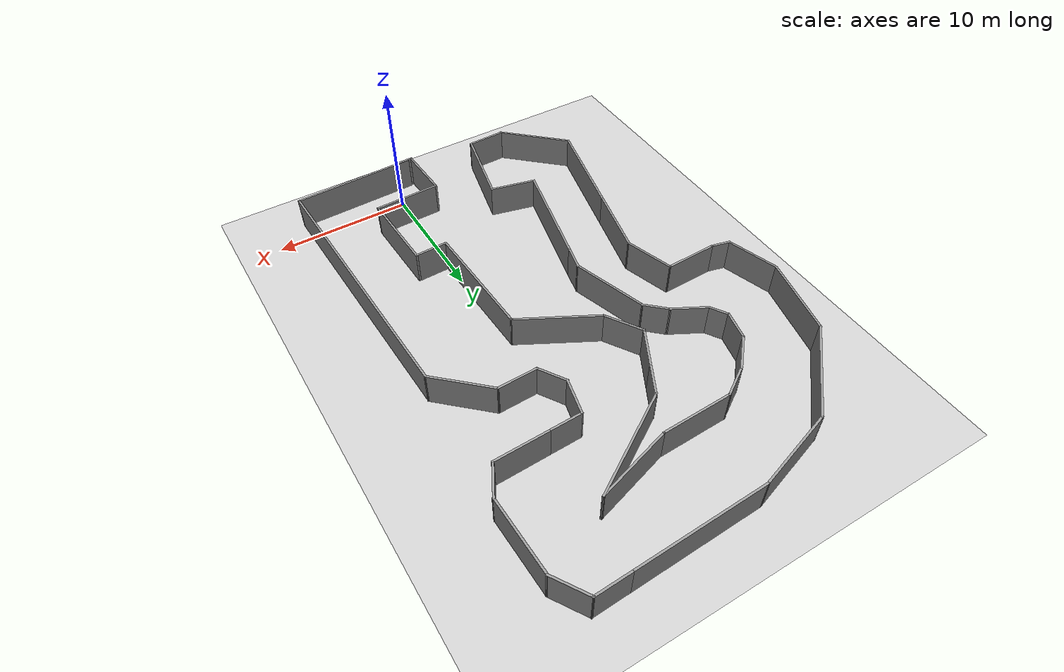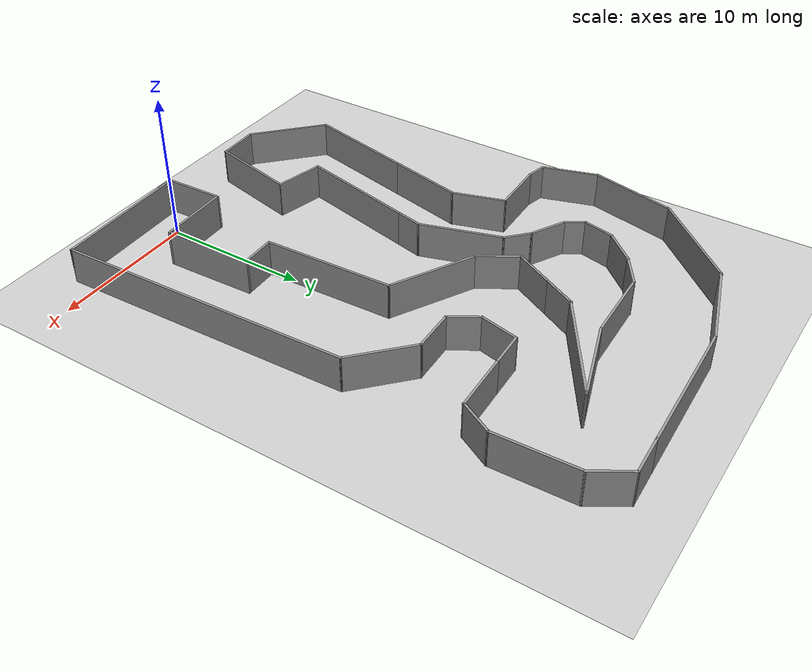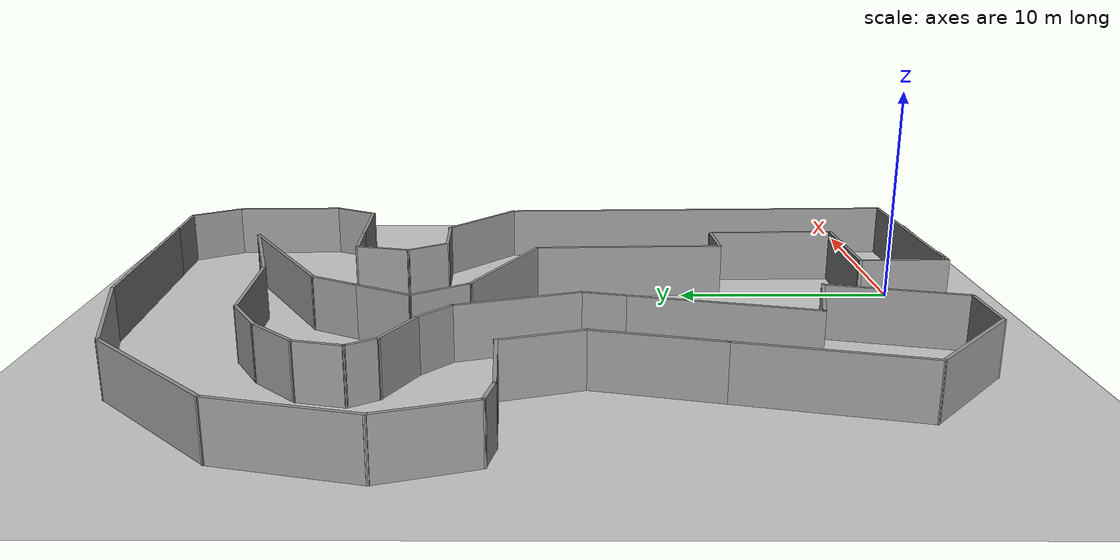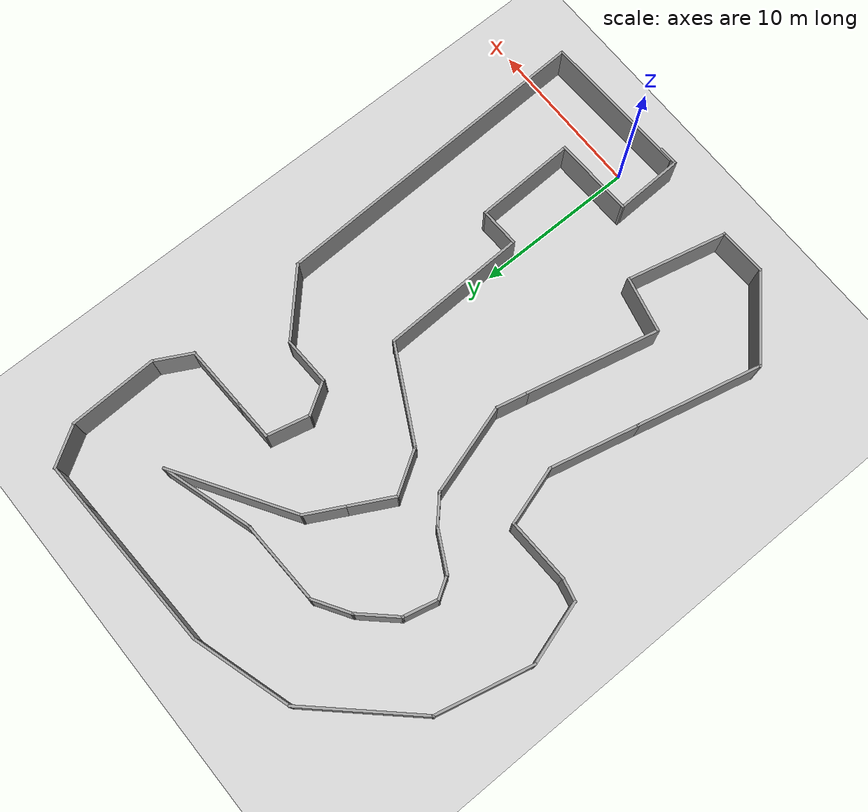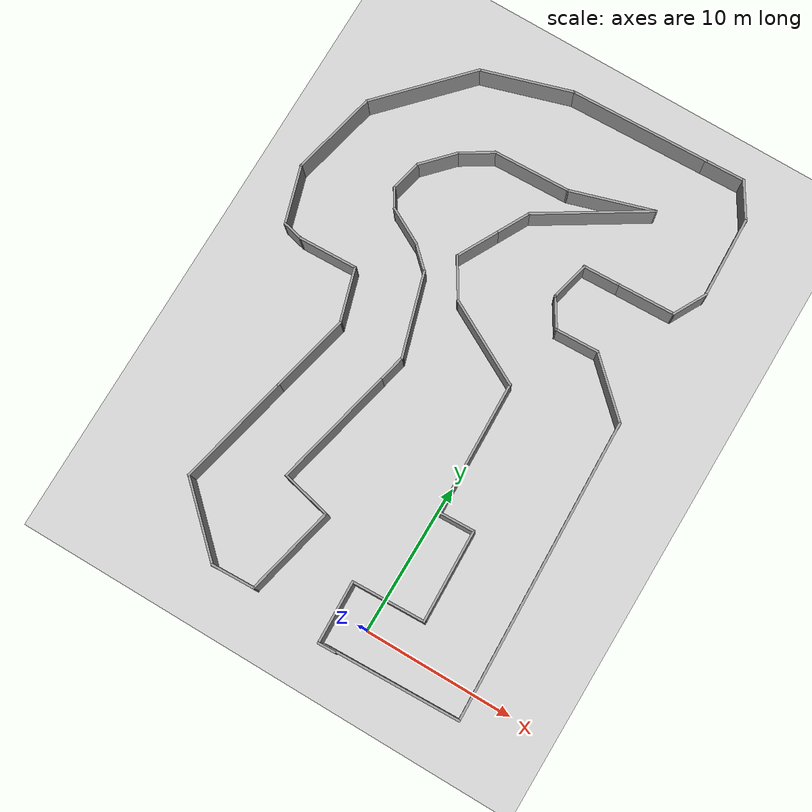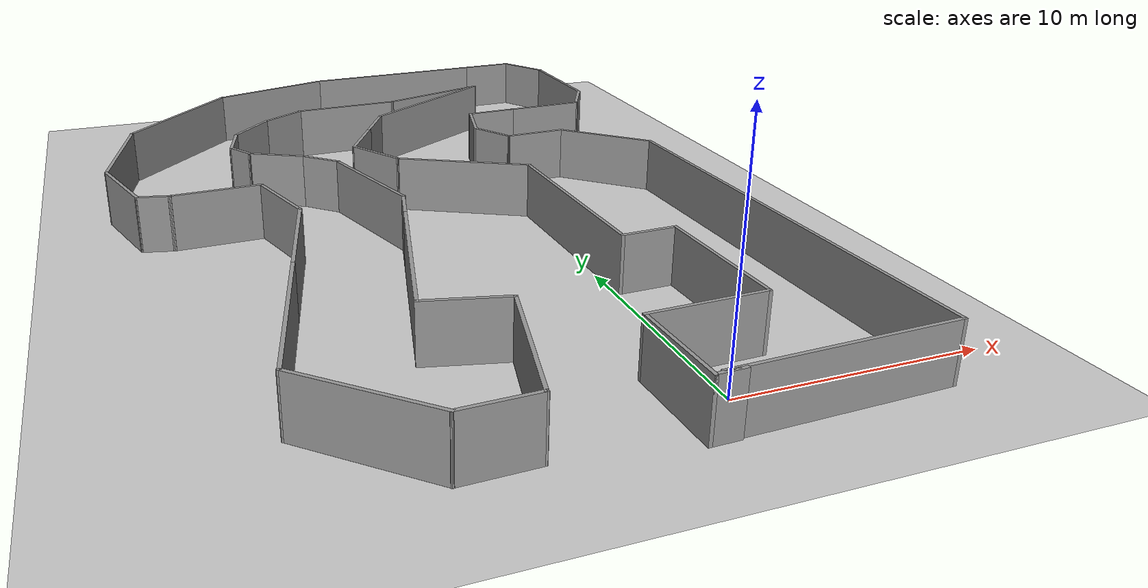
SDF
<sdf version="1.7">
 <world name="default">
  <light name="sun" type="directional">
   <pose>0 0 10 0 -0 0</pose>
   <diffuse>0.8 0.8 0.8 1</diffuse>
   <specular>0.2 0.2 0.2 1</specular>
   <attenuation>
    <range>1000</range>
    <constant>0.9</constant>
    <linear>0.01</linear>
    <quadratic>0.001</quadratic>
   </attenuation>
   <direction>-0.5 0.1 -0.9</direction>
   <spot><inner_angle>0</inner_angle><outer_angle>0</outer_angle><falloff>0</falloff></spot>
  </light>
  <model name="ground_plane">
   <static>1</static>
   <link name="link">
    <collision name="collision">
     <geometry><plane><normal>0 0 1</normal><size>100 100</size></plane></geometry>
     <surface>
      <contact><collide_bitmask>65535</collide_bitmask></contact>
      <friction><ode><mu>100</mu><mu2>50</mu2></ode></friction>
     </surface>
    </collision>
    <visual name="visual">
     <cast_shadows>0</cast_shadows>
     <geometry><plane><normal>0 0 1</normal><size>100 100</size></plane></geometry>
     <material>
      <script><uri>file://media/materials/scripts/gazebo.material</uri><name>Gazebo/Grey</name></script>
     </material>
    </visual>
   </link>
  </model>
  <gravity>0 0 -9.8</gravity>
  <magnetic_field>6e-06 2.3e-05 -4.2e-05</magnetic_field>
  <atmosphere type="adiabatic"/>
  <physics type="ode">
   <max_step_size>0.001</max_step_size>
   <real_time_factor>1</real_time_factor>
   <real_time_update_rate>1000</real_time_update_rate>
  </physics>
  <scene><ambient>0.4 0.4 0.4 1</ambient><background>0.7 0.7 0.7 1</background><shadows>1</shadows></scene>
  <audio><device>default</device></audio>
  <spherical_coordinates>
   <surface_model>EARTH_WGS84</surface_model>
   <latitude_deg>0</latitude_deg>
   <longitude_deg>0</longitude_deg>
   <elevation>0</elevation>
   <heading_deg>0</heading_deg>
  </spherical_coordinates>
  <model name="level2">
   <pose>-5.16233 16.5405 -0 0 -0 1.60346</pose>
   <link name="Wall_10">
    <collision name="Wall_10_Collision">
     <geometry><box><size>2.5 0.15 2.5</size></box></geometry>
     <pose>0 0 1.25 0 -0 0</pose>
    </collision>
    <visual name="Wall_10_Visual">
     <pose>0 0 1.25 0 -0 0</pose>
     <geometry><box><size>2.5 0.15 2.5</size></box></geometry>
     <material>
      <script><uri>file://media/materials/scripts/gazebo.material</uri><name>Gazebo/Grey</name></script>
      <ambient>1 1 1 1</ambient>
     </material>
     <meta><layer>0</layer></meta>
    </visual>
    <pose>9.04413 -6.72144 0 0 -0 -1.5708</pose>
   </link>
   <link name="Wall_11">
    <collision name="Wall_11_Collision">
     <geometry><box><size>4 0.15 2.5</size></box></geometry>
     <pose>0 0 1.25 0 -0 0</pose>
    </collision>
    <visual name="Wall_11_Visual">
     <pose>0 0 1.25 0 -0 0</pose>
     <geometry><box><size>4 0.15 2.5</size></box></geometry>
     <material>
      <script><uri>file://media/materials/scripts/gazebo.material</uri><name>Gazebo/Grey</name></script>
      <ambient>1 1 1 1</ambient>
     </material>
     <meta><layer>0</layer></meta>
    </visual>
    <pose>9.04413 -9.82144 0 0 -0 -1.5708</pose>
   </link>
   <link name="Wall_12">
    <collision name="Wall_12_Collision">
     <geometry><box><size>2.5 0.15 2.5</size></box></geometry>
     <pose>0 0 1.25 0 -0 0</pose>
    </collision>
    <visual name="Wall_12_Visual">
     <pose>0 0 1.25 0 -0 0</pose>
     <geometry><box><size>2.5 0.15 2.5</size></box></geometry>
     <material>
      <script><uri>file://media/materials/scripts/gazebo.material</uri><name>Gazebo/Grey</name></script>
      <ambient>1 1 1 1</ambient>
     </material>
     <meta><layer>0</layer></meta>
    </visual>
    <pose>10.0617 -12.3339 0 0 -0 -0.523599</pose>
   </link>
   <link name="Wall_13">
    <collision name="Wall_13_Collision">
     <geometry><box><size>5.5 0.15 2.5</size></box></geometry>
     <pose>0 0 1.25 0 -0 0</pose>
    </collision>
    <visual name="Wall_13_Visual">
     <pose>0 0 1.25 0 -0 0</pose>
     <geometry><box><size>5.5 0.15 2.5</size></box></geometry>
     <material>
      <script><uri>file://media/materials/scripts/gazebo.material</uri><name>Gazebo/Grey</name></script>
      <ambient>1 1 1 1</ambient>
     </material>
     <meta><layer>0</layer></meta>
    </visual>
    <pose>13.7543 -12.9214 0 0 -0 0</pose>
   </link>
   <link name="Wall_14">
    <collision name="Wall_14_Collision">
     <geometry><box><size>2.75 0.15 2.5</size></box></geometry>
     <pose>0 0 1.25 0 -0 0</pose>
    </collision>
    <visual name="Wall_14_Visual">
     <pose>0 0 1.25 0 -0 0</pose>
     <geometry><box><size>2.75 0.15 2.5</size></box></geometry>
     <material>
      <script><uri>file://media/materials/scripts/gazebo.material</uri><name>Gazebo/Grey</name></script>
      <ambient>1 1 1 1</ambient>
     </material>
     <meta><layer>0</layer></meta>
    </visual>
    <pose>17.5551 -12.2714 0 0 -0 0.523599</pose>
   </link>
   <link name="Wall_15">
    <collision name="Wall_15_Collision">
     <geometry><box><size>2.75 0.15 2.5</size></box></geometry>
     <pose>0 0 1.25 0 -0 0</pose>
    </collision>
    <visual name="Wall_15_Visual">
     <pose>0 0 1.25 0 -0 0</pose>
     <geometry><box><size>2.75 0.15 2.5</size></box></geometry>
     <material>
      <script><uri>file://media/materials/scripts/gazebo.material</uri><name>Gazebo/Grey</name></script>
      <ambient>1 1 1 1</ambient>
     </material>
     <meta><layer>0</layer></meta>
    </visual>
    <pose>18.681 -10.3214 0 0 -0 1.5708</pose>
   </link>
   <link name="Wall_16">
    <collision name="Wall_16_Collision">
     <geometry><box><size>9.5 0.15 2.5</size></box></geometry>
     <pose>0 0 1.25 0 -0 0</pose>
    </collision>
    <visual name="Wall_16_Visual">
     <pose>0 0 1.25 0 -0 0</pose>
     <geometry><box><size>9.5 0.15 2.5</size></box></geometry>
     <material>
      <script><uri>file://media/materials/scripts/gazebo.material</uri><name>Gazebo/Grey</name></script>
      <ambient>1 1 1 1</ambient>
     </material>
     <meta><layer>0</layer></meta>
    </visual>
    <pose>18.681 -4.34644 0 0 -0 1.5708</pose>
   </link>
   <link name="Wall_17">
    <collision name="Wall_17_Collision">
     <geometry><box><size>6.25 0.15 2.5</size></box></geometry>
     <pose>0 0 1.25 0 -0 0</pose>
    </collision>
    <visual name="Wall_17_Visual">
     <pose>0 0 1.25 0 -0 0</pose>
     <geometry><box><size>6.25 0.15 2.5</size></box></geometry>
     <material>
      <script><uri>file://media/materials/scripts/gazebo.material</uri><name>Gazebo/Grey</name></script>
      <ambient>1 1 1 1</ambient>
     </material>
     <meta><layer>0</layer></meta>
    </visual>
    <pose>17.8916 3.27463 0 0 -0 1.8326</pose>
   </link>
   <link name="Wall_18">
    <collision name="Wall_18_Collision">
     <geometry><box><size>7.5 0.15 2.5</size></box></geometry>
     <pose>0 0 1.25 0 -0 0</pose>
    </collision>
    <visual name="Wall_18_Visual">
     <pose>0 0 1.25 0 -0 0</pose>
     <geometry><box><size>7.5 0.15 2.5</size></box></geometry>
     <material>
      <script><uri>file://media/materials/scripts/gazebo.material</uri><name>Gazebo/Grey</name></script>
      <ambient>1 1 1 1</ambient>
     </material>
     <meta><layer>0</layer></meta>
    </visual>
    <pose>14.5035 8.81932 0 0 -0 2.35619</pose>
   </link>
   <link name="Wall_19">
    <collision name="Wall_19_Collision">
     <geometry><box><size>6 0.15 2.5</size></box></geometry>
     <pose>0 0 1.25 0 -0 0</pose>
    </collision>
    <visual name="Wall_19_Visual">
     <pose>0 0 1.25 0 -0 0</pose>
     <geometry><box><size>6 0.15 2.5</size></box></geometry>
     <material>
      <script><uri>file://media/materials/scripts/gazebo.material</uri><name>Gazebo/Grey</name></script>
      <ambient>1 1 1 1</ambient>
     </material>
     <meta><layer>0</layer></meta>
    </visual>
    <pose>9.07959 12.175 0 0 -0 2.87979</pose>
   </link>
   <link name="Wall_20">
    <collision name="Wall_20_Collision">
     <geometry><box><size>4 0.15 2.5</size></box></geometry>
     <pose>0 0 1.25 0 -0 0</pose>
    </collision>
    <visual name="Wall_20_Visual">
     <pose>0 0 1.25 0 -0 0</pose>
     <geometry><box><size>4 0.15 2.5</size></box></geometry>
     <material>
      <script><uri>file://media/materials/scripts/gazebo.material</uri><name>Gazebo/Grey</name></script>
      <ambient>1 1 1 1</ambient>
     </material>
     <meta><layer>0</layer></meta>
    </visual>
    <pose>4.39485 12.4338 0 0 -0 -2.87979</pose>
   </link>
   <link name="Wall_21">
    <collision name="Wall_21_Collision">
     <geometry><box><size>1.5 0.15 2.5</size></box></geometry>
     <pose>0 0 1.25 0 -0 0</pose>
    </collision>
    <visual name="Wall_21_Visual">
     <pose>0 0 1.25 0 -0 0</pose>
     <geometry><box><size>1.5 0.15 2.5</size></box></geometry>
     <material>
      <script><uri>file://media/materials/scripts/gazebo.material</uri><name>Gazebo/Grey</name></script>
      <ambient>1 1 1 1</ambient>
     </material>
     <meta><layer>0</layer></meta>
    </visual>
    <pose>2.36074 11.2836 0 0 -0 -1.8326</pose>
   </link>
   <link name="Wall_22">
    <collision name="Wall_22_Collision">
     <geometry><box><size>4 0.15 2.5</size></box></geometry>
     <pose>0 0 1.25 0 -0 0</pose>
    </collision>
    <visual name="Wall_22_Visual">
     <pose>0 0 1.25 0 -0 0</pose>
     <geometry><box><size>4 0.15 2.5</size></box></geometry>
     <material>
      <script><uri>file://media/materials/scripts/gazebo.material</uri><name>Gazebo/Grey</name></script>
      <ambient>1 1 1 1</ambient>
     </material>
     <meta><layer>0</layer></meta>
    </visual>
    <pose>2.18604 8.70658 0 0 -0 -1.5708</pose>
   </link>
   <link name="Wall_23">
    <collision name="Wall_23_Collision">
     <geometry><box><size>3.75 0.15 2.5</size></box></geometry>
     <pose>0 0 1.25 0 -0 0</pose>
    </collision>
    <visual name="Wall_23_Visual">
     <pose>0 0 1.25 0 -0 0</pose>
     <geometry><box><size>3.75 0.15 2.5</size></box></geometry>
     <material>
      <script><uri>file://media/materials/scripts/gazebo.material</uri><name>Gazebo/Grey</name></script>
      <ambient>1 1 1 1</ambient>
     </material>
     <meta><layer>0</layer></meta>
    </visual>
    <pose>0.447371 6.31571 0 0 -0 -2.87979</pose>
   </link>
   <link name="Wall_24">
    <collision name="Wall_24_Collision">
     <geometry><box><size>5.5 0.15 2.5</size></box></geometry>
     <pose>0 0 1.25 0 -0 0</pose>
    </collision>
    <visual name="Wall_24_Visual">
     <pose>0 0 1.25 0 -0 0</pose>
     <geometry><box><size>5.5 0.15 2.5</size></box></geometry>
     <material>
      <script><uri>file://media/materials/scripts/gazebo.material</uri><name>Gazebo/Grey</name></script>
      <ambient>1 1 1 1</ambient>
     </material>
     <meta><layer>0</layer></meta>
    </visual>
    <pose>-3.87515 6.54217 0 0 -0 2.87979</pose>
   </link>
   <link name="Wall_25">
    <collision name="Wall_25_Collision">
     <geometry><box><size>7.75 0.15 2.5</size></box></geometry>
     <pose>0 0 1.25 0 -0 0</pose>
    </collision>
    <visual name="Wall_25_Visual">
     <pose>0 0 1.25 0 -0 0</pose>
     <geometry><box><size>7.75 0.15 2.5</size></box></geometry>
     <material>
      <script><uri>file://media/materials/scripts/gazebo.material</uri><name>Gazebo/Grey</name></script>
      <ambient>1 1 1 1</ambient>
     </material>
     <meta><layer>0</layer></meta>
    </visual>
    <pose>-10.1295 8.21803 0 0 -0 2.87979</pose>
   </link>
   <link name="Wall_26">
    <collision name="Wall_26_Collision">
     <geometry><box><size>5.75 0.15 2.5</size></box></geometry>
     <pose>0 0 1.25 0 -0 0</pose>
    </collision>
    <visual name="Wall_26_Visual">
     <pose>0 0 1.25 0 -0 0</pose>
     <geometry><box><size>5.75 0.15 2.5</size></box></geometry>
     <material>
      <script><uri>file://media/materials/scripts/gazebo.material</uri><name>Gazebo/Grey</name></script>
      <ambient>1 1 1 1</ambient>
     </material>
     <meta><layer>0</layer></meta>
    </visual>
    <pose>-15.7799 7.22164 0 0 -0 -2.35619</pose>
   </link>
   <link name="Wall_27">
    <collision name="Wall_27_Collision">
     <geometry><box><size>3 0.15 2.5</size></box></geometry>
     <pose>0 0 1.25 0 -0 0</pose>
    </collision>
    <visual name="Wall_27_Visual">
     <pose>0 0 1.25 0 -0 0</pose>
     <geometry><box><size>3 0.15 2.5</size></box></geometry>
     <material>
      <script><uri>file://media/materials/scripts/gazebo.material</uri><name>Gazebo/Grey</name></script>
      <ambient>1 1 1 1</ambient>
     </material>
     <meta><layer>0</layer></meta>
    </visual>
    <pose>-17.7598 3.81674 0 0 -0 -1.5708</pose>
   </link>
   <link name="Wall_28">
    <collision name="Wall_28_Collision">
     <geometry><box><size>6.25 0.15 2.5</size></box></geometry>
     <pose>0 0 1.25 0 -0 0</pose>
    </collision>
    <visual name="Wall_28_Visual">
     <pose>0 0 1.25 0 -0 0</pose>
     <geometry><box><size>6.25 0.15 2.5</size></box></geometry>
     <material>
      <script><uri>file://media/materials/scripts/gazebo.material</uri><name>Gazebo/Grey</name></script>
      <ambient>1 1 1 1</ambient>
     </material>
     <meta><layer>0</layer></meta>
    </visual>
    <pose>-14.8138 1.60234 0 0 -0 -0.261799</pose>
   </link>
   <link name="Wall_29">
    <collision name="Wall_29_Collision">
     <geometry><box><size>3.5 0.15 2.5</size></box></geometry>
     <pose>0 0 1.25 0 -0 0</pose>
    </collision>
    <visual name="Wall_29_Visual">
     <pose>0 0 1.25 0 -0 0</pose>
     <geometry><box><size>3.5 0.15 2.5</size></box></geometry>
     <material>
      <script><uri>file://media/materials/scripts/gazebo.material</uri><name>Gazebo/Grey</name></script>
      <ambient>1 1 1 1</ambient>
     </material>
     <meta><layer>0</layer></meta>
    </visual>
    <pose>-11.4342 2.43087 0 0 -0 1.309</pose>
   </link>
   <link name="Wall_3">
    <collision name="Wall_3_Collision">
     <geometry><box><size>9.25 0.15 2.5</size></box></geometry>
     <pose>0 0 1.25 0 -0 0</pose>
    </collision>
    <visual name="Wall_3_Visual">
     <pose>0 0 1.25 0 -0 0</pose>
     <geometry><box><size>9.25 0.15 2.5</size></box></geometry>
     <material>
      <script><uri>file://media/materials/scripts/gazebo.material</uri><name>Gazebo/Grey</name></script>
      <ambient>1 1 1 1</ambient>
     </material>
     <meta><layer>0</layer></meta>
    </visual>
    <pose>-18.6386 -7.4762 0 0 -0 -1.5708</pose>
   </link>
   <link name="Wall_30">
    <collision name="Wall_30_Collision">
     <geometry><box><size>8.25 0.15 2.5</size></box></geometry>
     <pose>0 0 1.25 0 -0 0</pose>
    </collision>
    <visual name="Wall_30_Visual">
     <pose>0 0 1.25 0 -0 0</pose>
     <geometry><box><size>8.25 0.15 2.5</size></box></geometry>
     <material>
      <script><uri>file://media/materials/scripts/gazebo.material</uri><name>Gazebo/Grey</name></script>
      <ambient>1 1 1 1</ambient>
     </material>
     <meta><layer>0</layer></meta>
    </visual>
    <pose>-7.08864 3.00058 0 0 -0 -0.261799</pose>
   </link>
   <link name="Wall_31">
    <collision name="Wall_31_Collision">
     <geometry><box><size>2 0.15 2.5</size></box></geometry>
     <pose>0 0 1.25 0 -0 0</pose>
    </collision>
    <visual name="Wall_31_Visual">
     <pose>0 0 1.25 0 -0 0</pose>
     <geometry><box><size>2 0.15 2.5</size></box></geometry>
     <material>
      <script><uri>file://media/materials/scripts/gazebo.material</uri><name>Gazebo/Grey</name></script>
      <ambient>1 1 1 1</ambient>
     </material>
     <meta><layer>0</layer></meta>
    </visual>
    <pose>-2.28316 1.71296 0 0 -0 -0.261799</pose>
   </link>
   <link name="Wall_32">
    <collision name="Wall_32_Collision">
     <geometry><box><size>5.75 0.15 2.5</size></box></geometry>
     <pose>0 0 1.25 0 -0 0</pose>
    </collision>
    <visual name="Wall_32_Visual">
     <pose>0 0 1.25 0 -0 0</pose>
     <geometry><box><size>5.75 0.15 2.5</size></box></geometry>
     <material>
      <script><uri>file://media/materials/scripts/gazebo.material</uri><name>Gazebo/Grey</name></script>
      <ambient>1 1 1 1</ambient>
     </material>
     <meta><layer>0</layer></meta>
    </visual>
    <pose>1.31491 2.19824 0 0 -0 0.261799</pose>
   </link>
   <link name="Wall_33">
    <collision name="Wall_33_Collision">
     <geometry><box><size>2 0.15 2.5</size></box></geometry>
     <pose>0 0 1.25 0 -0 0</pose>
    </collision>
    <visual name="Wall_33_Visual">
     <pose>0 0 1.25 0 -0 0</pose>
     <geometry><box><size>2 0.15 2.5</size></box></geometry>
     <material>
      <script><uri>file://media/materials/scripts/gazebo.material</uri><name>Gazebo/Grey</name></script>
      <ambient>1 1 1 1</ambient>
     </material>
     <meta><layer>0</layer></meta>
    </visual>
    <pose>4.67358 3.57701 0 0 -0 0.785398</pose>
   </link>
   <link name="Wall_34">
    <collision name="Wall_34_Collision">
     <geometry><box><size>2.75 0.15 2.5</size></box></geometry>
     <pose>0 0 1.25 0 -0 0</pose>
    </collision>
    <visual name="Wall_34_Visual">
     <pose>0 0 1.25 0 -0 0</pose>
     <geometry><box><size>2.75 0.15 2.5</size></box></geometry>
     <material>
      <script><uri>file://media/materials/scripts/gazebo.material</uri><name>Gazebo/Grey</name></script>
      <ambient>1 1 1 1</ambient>
     </material>
     <meta><layer>0</layer></meta>
    </visual>
    <pose>5.97765 5.35691 0 0 -0 1.0472</pose>
   </link>
   <link name="Wall_35">
    <collision name="Wall_35_Collision">
     <geometry><box><size>1.5 0.15 2.5</size></box></geometry>
     <pose>0 0 1.25 0 -0 0</pose>
    </collision>
    <visual name="Wall_35_Visual">
     <pose>0 0 1.25 0 -0 0</pose>
     <geometry><box><size>1.5 0.15 2.5</size></box></geometry>
     <material>
      <script><uri>file://media/materials/scripts/gazebo.material</uri><name>Gazebo/Grey</name></script>
      <ambient>1 1 1 1</ambient>
     </material>
     <meta><layer>0</layer></meta>
    </visual>
    <pose>7.21222 6.82025 0 0 -0 0.523599</pose>
   </link>
   <link name="Wall_36">
    <collision name="Wall_36_Collision">
     <geometry><box><size>2.25 0.15 2.5</size></box></geometry>
     <pose>0 0 1.25 0 -0 0</pose>
    </collision>
    <visual name="Wall_36_Visual">
     <pose>0 0 1.25 0 -0 0</pose>
     <geometry><box><size>2.25 0.15 2.5</size></box></geometry>
     <material>
      <script><uri>file://media/materials/scripts/gazebo.material</uri><name>Gazebo/Grey</name></script>
      <ambient>1 1 1 1</ambient>
     </material>
     <meta><layer>0</layer></meta>
    </visual>
    <pose>8.81101 6.88599 0 0 -0 -0.261799</pose>
   </link>
   <link name="Wall_37">
    <collision name="Wall_37_Collision">
     <geometry><box><size>2.75 0.15 2.5</size></box></geometry>
     <pose>0 0 1.25 0 -0 0</pose>
    </collision>
    <visual name="Wall_37_Visual">
     <pose>0 0 1.25 0 -0 0</pose>
     <geometry><box><size>2.75 0.15 2.5</size></box></geometry>
     <material>
      <script><uri>file://media/materials/scripts/gazebo.material</uri><name>Gazebo/Grey</name></script>
      <ambient>1 1 1 1</ambient>
     </material>
     <meta><layer>0</layer></meta>
    </visual>
    <pose>10.7445 5.69499 0 0 -0 -0.785398</pose>
   </link>
   <link name="Wall_38">
    <collision name="Wall_38_Collision">
     <geometry><box><size>2.5 0.15 2.5</size></box></geometry>
     <pose>0 0 1.25 0 -0 0</pose>
    </collision>
    <visual name="Wall_38_Visual">
     <pose>0 0 1.25 0 -0 0</pose>
     <geometry><box><size>2.5 0.15 2.5</size></box></geometry>
     <material>
      <script><uri>file://media/materials/scripts/gazebo.material</uri><name>Gazebo/Grey</name></script>
      <ambient>1 1 1 1</ambient>
     </material>
     <meta><layer>0</layer></meta>
    </visual>
    <pose>12.2512 3.75817 0 0 -0 -1.0472</pose>
   </link>
   <link name="Wall_39">
    <collision name="Wall_39_Collision">
     <geometry><box><size>5.25 0.15 2.5</size></box></geometry>
     <pose>0 0 1.25 0 -0 0</pose>
    </collision>
    <visual name="Wall_39_Visual">
     <pose>0 0 1.25 0 -0 0</pose>
     <geometry><box><size>5.25 0.15 2.5</size></box></geometry>
     <material>
      <script><uri>file://media/materials/scripts/gazebo.material</uri><name>Gazebo/Grey</name></script>
      <ambient>1 1 1 1</ambient>
     </material>
     <meta><layer>0</layer></meta>
    </visual>
    <pose>12.8387 0.19059 0 0 -0 -1.5708</pose>
   </link>
   <link name="Wall_40">
    <collision name="Wall_40_Collision">
     <geometry><box><size>5.75 0.15 2.5</size></box></geometry>
     <pose>0 0 1.25 0 -0 0</pose>
    </collision>
    <visual name="Wall_40_Visual">
     <pose>0 0 1.25 0 -0 0</pose>
     <geometry><box><size>5.75 0.15 2.5</size></box></geometry>
     <material>
      <script><uri>file://media/materials/scripts/gazebo.material</uri><name>Gazebo/Grey</name></script>
      <ambient>1 1 1 1</ambient>
     </material>
     <meta><layer>0</layer></meta>
    </visual>
    <pose>13.5634 -5.064 0 0 -0 -1.309</pose>
   </link>
   <link name="Wall_41">
    <collision name="Wall_41_Collision">
     <geometry><box><size>8 0.15 2.5</size></box></geometry>
     <pose>0 0 1.25 0 -0 0</pose>
    </collision>
    <visual name="Wall_41_Visual">
     <pose>0 0 1.25 0 -0 0</pose>
     <geometry><box><size>8 0.15 2.5</size></box></geometry>
     <material>
      <script><uri>file://media/materials/scripts/gazebo.material</uri><name>Gazebo/Grey</name></script>
      <ambient>1 1 1 1</ambient>
     </material>
     <meta><layer>0</layer></meta>
    </visual>
    <pose>12.3256 -4.36944 0 0 -0 2.0944</pose>
   </link>
   <link name="Wall_42">
    <collision name="Wall_42_Collision">
     <geometry><box><size>2.5 0.15 2.5</size></box></geometry>
     <pose>0 0 1.25 0 -0 0</pose>
    </collision>
    <visual name="Wall_42_Visual">
     <pose>0 0 1.25 0 -0 0</pose>
     <geometry><box><size>2.5 0.15 2.5</size></box></geometry>
     <material>
      <script><uri>file://media/materials/scripts/gazebo.material</uri><name>Gazebo/Grey</name></script>
      <ambient>1 1 1 1</ambient>
     </material>
     <meta><layer>0</layer></meta>
    </visual>
    <pose>9.34551 -0.382795 0 0 -0 2.61799</pose>
   </link>
   <link name="Wall_43">
    <collision name="Wall_43_Collision">
     <geometry><box><size>3 0.15 2.5</size></box></geometry>
     <pose>0 0 1.25 0 -0 0</pose>
    </collision>
    <visual name="Wall_43_Visual">
     <pose>0 0 1.25 0 -0 0</pose>
     <geometry><box><size>3 0.15 2.5</size></box></geometry>
     <material>
      <script><uri>file://media/materials/scripts/gazebo.material</uri><name>Gazebo/Grey</name></script>
      <ambient>1 1 1 1</ambient>
     </material>
     <meta><layer>0</layer></meta>
    </visual>
    <pose>7.09385 0.917205 0 0 -0 2.61799</pose>
   </link>
   <link name="Wall_44">
    <collision name="Wall_44_Collision">
     <geometry><box><size>3 0.15 2.5</size></box></geometry>
     <pose>0 0 1.25 0 -0 0</pose>
    </collision>
    <visual name="Wall_44_Visual">
     <pose>0 0 1.25 0 -0 0</pose>
     <geometry><box><size>3 0.15 2.5</size></box></geometry>
     <material>
      <script><uri>file://media/materials/scripts/gazebo.material</uri><name>Gazebo/Grey</name></script>
      <ambient>1 1 1 1</ambient>
     </material>
     <meta><layer>0</layer></meta>
    </visual>
    <pose>4.62568 0.917205 0 0 -0 -2.61799</pose>
   </link>
   <link name="Wall_45">
    <collision name="Wall_45_Collision">
     <geometry><box><size>6.25 0.15 2.5</size></box></geometry>
     <pose>0 0 1.25 0 -0 0</pose>
    </collision>
    <visual name="Wall_45_Visual">
     <pose>0 0 1.25 0 -0 0</pose>
     <geometry><box><size>6.25 0.15 2.5</size></box></geometry>
     <material>
      <script><uri>file://media/materials/scripts/gazebo.material</uri><name>Gazebo/Grey</name></script>
      <ambient>1 1 1 1</ambient>
     </material>
     <meta><layer>0</layer></meta>
    </visual>
    <pose>1.86659 -2.43667 0 0 -0 -2.0944</pose>
   </link>
   <link name="Wall_46">
    <collision name="Wall_46_Collision">
     <geometry><box><size>9 0.15 2.5</size></box></geometry>
     <pose>0 0 1.25 0 -0 0</pose>
    </collision>
    <visual name="Wall_46_Visual">
     <pose>0 0 1.25 0 -0 0</pose>
     <geometry><box><size>9 0.15 2.5</size></box></geometry>
     <material>
      <script><uri>file://media/materials/scripts/gazebo.material</uri><name>Gazebo/Grey</name></script>
      <ambient>1 1 1 1</ambient>
     </material>
     <meta><layer>0</layer></meta>
    </visual>
    <pose>-4.08341 -5.07805 0 0 -0 3.14159</pose>
   </link>
   <link name="Wall_47">
    <collision name="Wall_47_Collision">
     <geometry><box><size>2.5 0.15 2.5</size></box></geometry>
     <pose>0 0 1.25 0 -0 0</pose>
    </collision>
    <visual name="Wall_47_Visual">
     <pose>0 0 1.25 0 -0 0</pose>
     <geometry><box><size>2.5 0.15 2.5</size></box></geometry>
     <material>
      <script><uri>file://media/materials/scripts/gazebo.material</uri><name>Gazebo/Grey</name></script>
      <ambient>1 1 1 1</ambient>
     </material>
     <meta><layer>0</layer></meta>
    </visual>
    <pose>-8.50841 -6.25305 0 0 -0 -1.5708</pose>
   </link>
   <link name="Wall_48">
    <collision name="Wall_48_Collision">
     <geometry><box><size>6.25 0.15 2.5</size></box></geometry>
     <pose>0 0 1.25 0 -0 0</pose>
    </collision>
    <visual name="Wall_48_Visual">
     <pose>0 0 1.25 0 -0 0</pose>
     <geometry><box><size>6.25 0.15 2.5</size></box></geometry>
     <material>
      <script><uri>file://media/materials/scripts/gazebo.material</uri><name>Gazebo/Grey</name></script>
      <ambient>1 1 1 1</ambient>
     </material>
     <meta><layer>0</layer></meta>
    </visual>
    <pose>-11.5584 -7.42805 0 0 -0 3.14159</pose>
   </link>
   <link name="Wall_49">
    <collision name="Wall_49_Collision">
     <geometry><box><size>5 0.15 2.5</size></box></geometry>
     <pose>0 0 1.25 0 -0 0</pose>
    </collision>
    <visual name="Wall_49_Visual">
     <pose>0 0 1.25 0 -0 0</pose>
     <geometry><box><size>5 0.15 2.5</size></box></geometry>
     <material>
      <script><uri>file://media/materials/scripts/gazebo.material</uri><name>Gazebo/Grey</name></script>
      <ambient>1 1 1 1</ambient>
     </material>
     <meta><layer>0</layer></meta>
    </visual>
    <pose>-14.6084 -5.00305 0 0 -0 1.5708</pose>
   </link>
   <link name="Wall_5">
    <collision name="Wall_5_Collision">
     <geometry><box><size>20.25 0.15 2.5</size></box></geometry>
     <pose>0 0 1.25 0 -0 0</pose>
    </collision>
    <visual name="Wall_5_Visual">
     <pose>0 0 1.25 0 -0 0</pose>
     <geometry><box><size>20.25 0.15 2.5</size></box></geometry>
     <material>
      <script><uri>file://media/materials/scripts/gazebo.material</uri><name>Gazebo/Grey</name></script>
      <ambient>1 1 1 1</ambient>
     </material>
     <meta><layer>0</layer></meta>
    </visual>
    <pose>-8.58862 -12.0262 0 0 -0 0</pose>
   </link>
   <link name="Wall_50">
    <collision name="Wall_50_Collision">
     <geometry><box><size>4.25 0.15 2.5</size></box></geometry>
     <pose>0 0 1.25 0 -0 0</pose>
    </collision>
    <visual name="Wall_50_Visual">
     <pose>0 0 1.25 0 -0 0</pose>
     <geometry><box><size>4.25 0.15 2.5</size></box></geometry>
     <material>
      <script><uri>file://media/materials/scripts/gazebo.material</uri><name>Gazebo/Grey</name></script>
      <ambient>1 1 1 1</ambient>
     </material>
     <meta><layer>0</layer></meta>
    </visual>
    <pose>-16.6584 -2.57805 0 0 -0 3.14159</pose>
   </link>
   <link name="Wall_51">
    <collision name="Wall_51_Collision">
     <geometry><box><size>1.25 0.15 2.5</size></box></geometry>
     <pose>0 0 1.25 0 -0 0</pose>
    </collision>
    <visual name="Wall_51_Visual">
     <pose>0 0 1.25 0 -0 0</pose>
     <geometry><box><size>1.25 0.15 2.5</size></box></geometry>
     <material>
      <script><uri>file://media/materials/scripts/gazebo.material</uri><name>Gazebo/Grey</name></script>
      <ambient>1 1 1 1</ambient>
     </material>
     <meta><layer>0</layer></meta>
    </visual>
    <pose>-18.7084 -3.12805 0 0 -0 -1.5708</pose>
   </link>
   <link name="Wall_6">
    <collision name="Wall_6_Collision">
     <geometry><box><size>4.75 0.15 2.5</size></box></geometry>
     <pose>0 0 1.25 0 -0 0</pose>
    </collision>
    <visual name="Wall_6_Visual">
     <pose>0 0 1.25 0 -0 0</pose>
     <geometry><box><size>4.75 0.15 2.5</size></box></geometry>
     <material>
      <script><uri>file://media/materials/scripts/gazebo.material</uri><name>Gazebo/Grey</name></script>
      <ambient>1 1 1 1</ambient>
     </material>
     <meta><layer>0</layer></meta>
    </visual>
    <pose>3.08772 -10.3999 0 0 -0 0.785398</pose>
   </link>
   <link name="Wall_7">
    <collision name="Wall_7_Collision">
     <geometry><box><size>3 0.15 2.5</size></box></geometry>
     <pose>0 0 1.25 0 -0 0</pose>
    </collision>
    <visual name="Wall_7_Visual">
     <pose>0 0 1.25 0 -0 0</pose>
     <geometry><box><size>3 0.15 2.5</size></box></geometry>
     <material>
      <script><uri>file://media/materials/scripts/gazebo.material</uri><name>Gazebo/Grey</name></script>
      <ambient>1 1 1 1</ambient>
     </material>
     <meta><layer>0</layer></meta>
    </visual>
    <pose>4.71407 -7.34851 0 0 -0 1.5708</pose>
   </link>
   <link name="Wall_8">
    <collision name="Wall_8_Collision">
     <geometry><box><size>2.25 0.15 2.5</size></box></geometry>
     <pose>0 0 1.25 0 -0 0</pose>
    </collision>
    <visual name="Wall_8_Visual">
     <pose>0 0 1.25 0 -0 0</pose>
     <geometry><box><size>2.25 0.15 2.5</size></box></geometry>
     <material>
      <script><uri>file://media/materials/scripts/gazebo.material</uri><name>Gazebo/Grey</name></script>
      <ambient>1 1 1 1</ambient>
     </material>
     <meta><layer>0</layer></meta>
    </visual>
    <pose>5.62339 -5.39851 0 0 -0 0.523599</pose>
   </link>
   <link name="Wall_9">
    <collision name="Wall_9_Collision">
     <geometry><box><size>2.75 0.15 2.5</size></box></geometry>
     <pose>0 0 1.25 0 -0 0</pose>
    </collision>
    <visual name="Wall_9_Visual">
     <pose>0 0 1.25 0 -0 0</pose>
     <geometry><box><size>2.75 0.15 2.5</size></box></geometry>
     <material>
      <script><uri>file://media/materials/scripts/gazebo.material</uri><name>Gazebo/Grey</name></script>
      <ambient>1 1 1 1</ambient>
     </material>
     <meta><layer>0</layer></meta>
    </visual>
    <pose>7.78843 -5.20998 0 0 -0 -0.261799</pose>
   </link>
   <static>1</static>
  </model>
 </world>
</sdf>
